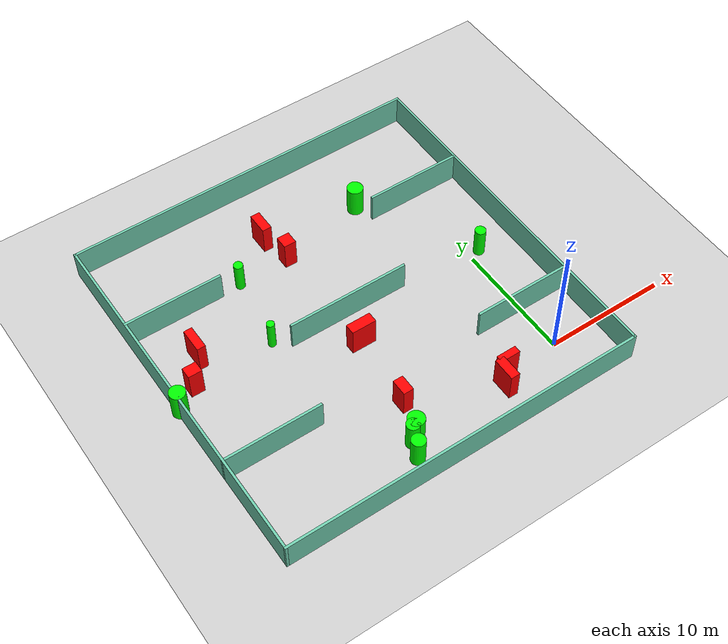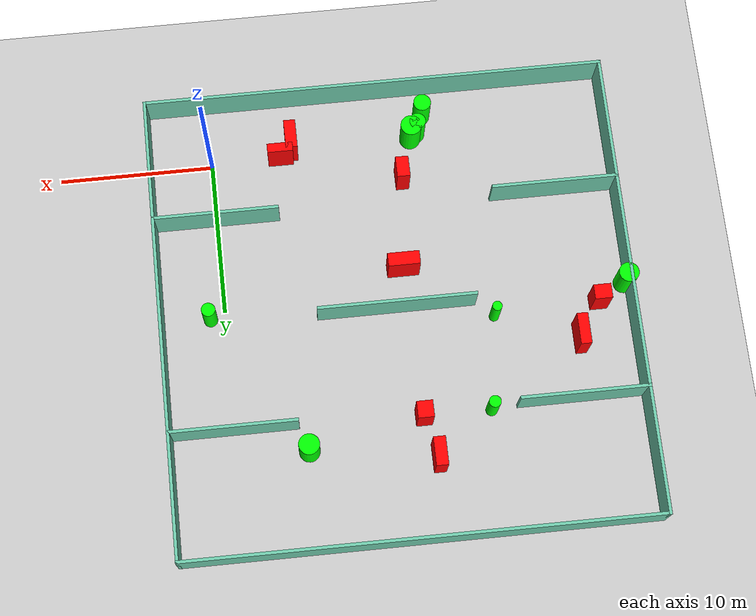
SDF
<sdf version="1.7">
 <world name="default">
  <light name="sun" type="directional">
   <pose>0 0 10 0 -0 0</pose>
   <diffuse>0.8 0.8 0.8 1</diffuse>
   <specular>0.2 0.2 0.2 1</specular>
   <attenuation>
    <range>1000</range>
    <constant>0.9</constant>
    <linear>0.01</linear>
    <quadratic>0.001</quadratic>
   </attenuation>
   <direction>-0.5 0.1 -0.9</direction>
   <spot><inner_angle>0</inner_angle><outer_angle>0</outer_angle><falloff>0</falloff></spot>
  </light>
  <model name="ground_plane">
   <static>1</static>
   <link name="link">
    <collision name="collision">
     <geometry><plane><normal>0 0 1</normal><size>100 100</size></plane></geometry>
     <surface>
      <contact><collide_bitmask>65535</collide_bitmask></contact>
      <friction><ode><mu>100</mu><mu2>50</mu2></ode></friction>
     </surface>
    </collision>
    <visual name="visual">
     <cast_shadows>0</cast_shadows>
     <geometry><plane><normal>0 0 1</normal><size>100 100</size></plane></geometry>
     <material>
      <script><uri>file://media/materials/scripts/gazebo.material</uri><name>Gazebo/Grey</name></script>
     </material>
    </visual>
   </link>
  </model>
  <gravity>0 0 -9.8</gravity>
  <magnetic_field>6e-06 2.3e-05 -4.2e-05</magnetic_field>
  <atmosphere type="adiabatic"/>
  <physics type="ode">
   <max_step_size>0.001</max_step_size>
   <real_time_factor>1</real_time_factor>
   <real_time_update_rate>1000</real_time_update_rate>
  </physics>
  <scene><ambient>0.4 0.4 0.4 1</ambient><background>0.7 0.7 0.7 1</background><shadows>1</shadows></scene>
  <spherical_coordinates>
   <surface_model>EARTH_WGS84</surface_model>
   <latitude_deg>0</latitude_deg>
   <longitude_deg>0</longitude_deg>
   <elevation>0</elevation>
   <heading_deg>0</heading_deg>
  </spherical_coordinates>
  <model name="my_base_walls">
   <link name="Wall_10">
    <collision name="Wall_10_Collision">
     <geometry><box><size>8.2 0.2 2.5</size></box></geometry>
     <pose>0 0 1.25 0 -0 0</pose>
    </collision>
    <visual name="Wall_10_Visual">
     <pose>0 0 1.25 0 -0 0</pose>
     <geometry><box><size>8.2 0.2 2.5</size></box></geometry>
     <material>
      <script><uri>file://media/materials/scripts/gazebo.material</uri><name>Gazebo/Grey</name></script>
      <ambient>0.435294 0.796078 0.67451 1</ambient>
     </material>
     <meta><layer>0</layer></meta>
    </visual>
    <pose>-11 -7 0 0 -0 0</pose>
   </link>
   <link name="Wall_12">
    <collision name="Wall_12_Collision">
     <geometry><box><size>8.2 0.2 2.5</size></box></geometry>
     <pose>0 0 1.25 0 -0 0</pose>
    </collision>
    <visual name="Wall_12_Visual">
     <pose>0 0 1.25 0 -0 0</pose>
     <geometry><box><size>8.2 0.2 2.5</size></box></geometry>
     <material>
      <script><uri>file://media/materials/scripts/gazebo.material</uri><name>Gazebo/Grey</name></script>
      <ambient>0.435294 0.796078 0.67451 1</ambient>
     </material>
     <meta><layer>0</layer></meta>
    </visual>
    <pose>-11 7 0 0 -0 0</pose>
   </link>
   <link name="Wall_14">
    <collision name="Wall_14_Collision">
     <geometry><box><size>8.2 0.2 2.5</size></box></geometry>
     <pose>0 0 1.25 0 -0 0</pose>
    </collision>
    <visual name="Wall_14_Visual">
     <pose>0 0 1.25 0 -0 0</pose>
     <geometry><box><size>8.2 0.2 2.5</size></box></geometry>
     <material>
      <script><uri>file://media/materials/scripts/gazebo.material</uri><name>Gazebo/Grey</name></script>
      <ambient>0.435294 0.796078 0.67451 1</ambient>
     </material>
     <meta><layer>0</layer></meta>
    </visual>
    <pose>11 7 0 0 -0 3.14159</pose>
   </link>
   <link name="Wall_16">
    <collision name="Wall_16_Collision">
     <geometry><box><size>10.2 0.2 2.5</size></box></geometry>
     <pose>0 0 1.25 0 -0 0</pose>
    </collision>
    <visual name="Wall_16_Visual">
     <pose>0 0 1.25 0 -0 0</pose>
     <geometry><box><size>10.2 0.2 2.5</size></box></geometry>
     <material>
      <script><uri>file://media/materials/scripts/gazebo.material</uri><name>Gazebo/Grey</name></script>
      <ambient>0.435294 0.796078 0.67451 1</ambient>
     </material>
     <meta><layer>0</layer></meta>
    </visual>
    <pose>0 0 0 0 -0 3.14159</pose>
   </link>
   <link name="Wall_2">
    <collision name="Wall_2_Collision">
     <geometry><box><size>30.2 0.2 2.5</size></box></geometry>
     <pose>0 0 1.25 0 -0 0</pose>
    </collision>
    <visual name="Wall_2_Visual">
     <pose>0 0 1.25 0 -0 0</pose>
     <geometry><box><size>30.2 0.2 2.5</size></box></geometry>
     <material>
      <script><uri>file://media/materials/scripts/gazebo.material</uri><name>Gazebo/Grey</name></script>
      <ambient>0.435294 0.796078 0.67451 1</ambient>
     </material>
     <meta><layer>0</layer></meta>
    </visual>
    <pose>0 -15 0 0 -0 3.14159</pose>
   </link>
   <link name="Wall_3">
    <collision name="Wall_3_Collision">
     <geometry><box><size>30.2 0.2 2.5</size></box></geometry>
     <pose>0 0 1.25 0 -0 0</pose>
    </collision>
    <visual name="Wall_3_Visual">
     <pose>0 0 1.25 0 -0 0</pose>
     <geometry><box><size>30.2 0.2 2.5</size></box></geometry>
     <material>
      <script><uri>file://media/materials/scripts/gazebo.material</uri><name>Gazebo/Grey</name></script>
      <ambient>0.435294 0.796078 0.67451 1</ambient>
     </material>
     <meta><layer>0</layer></meta>
    </visual>
    <pose>-15 0 0 0 -0 1.5708</pose>
   </link>
   <link name="Wall_4">
    <collision name="Wall_4_Collision">
     <geometry><box><size>30.2 0.2 2.5</size></box></geometry>
     <pose>0 0 1.25 0 -0 0</pose>
    </collision>
    <visual name="Wall_4_Visual">
     <pose>0 0 1.25 0 -0 0</pose>
     <geometry><box><size>30.2 0.2 2.5</size></box></geometry>
     <material>
      <script><uri>file://media/materials/scripts/gazebo.material</uri><name>Gazebo/Grey</name></script>
      <ambient>0.435294 0.796078 0.67451 1</ambient>
     </material>
     <meta><layer>0</layer></meta>
    </visual>
    <pose>0 15 0 0 -0 0</pose>
   </link>
   <link name="Wall_6">
    <collision name="Wall_6_Collision">
     <geometry><box><size>30.2 0.2 2.5</size></box></geometry>
     <pose>0 0 1.25 0 -0 0</pose>
    </collision>
    <visual name="Wall_6_Visual">
     <pose>0 0 1.25 0 -0 0</pose>
     <geometry><box><size>30.2 0.2 2.5</size></box></geometry>
     <material>
      <script><uri>file://media/materials/scripts/gazebo.material</uri><name>Gazebo/Grey</name></script>
      <ambient>0.435294 0.796078 0.67451 1</ambient>
     </material>
     <meta><layer>0</layer></meta>
    </visual>
    <pose>15 0 0 0 -0 1.5708</pose>
   </link>
   <link name="Wall_8">
    <collision name="Wall_8_Collision">
     <geometry><box><size>8.2 0.2 2.5</size></box></geometry>
     <pose>0 0 1.25 0 -0 0</pose>
    </collision>
    <visual name="Wall_8_Visual">
     <pose>0 0 1.25 0 -0 0</pose>
     <geometry><box><size>8.2 0.2 2.5</size></box></geometry>
     <material>
      <script><uri>file://media/materials/scripts/gazebo.material</uri><name>Gazebo/Grey</name></script>
      <ambient>0.435294 0.796078 0.67451 1</ambient>
     </material>
     <meta><layer>0</layer></meta>
    </visual>
    <pose>11 -7 0 0 -0 3.14159</pose>
   </link>
   <static>1</static>
   <pose>-11 11 0 0 -0 0</pose>
  </model>
  <model name="cylinder1">
   <static>1</static>
   <link name="link">
    <inertial>
     <mass>1</mass>
     <inertia><ixx>0.5</ixx><ixy>0</ixy><ixz>0</ixz><iyy>0.5</iyy><iyz>0</iyz><izz>1</izz></inertia>
    </inertial>
    <collision name="collision">
     <geometry><cylinder><radius>0.31347864846174145</radius><length>2.5</length></cylinder></geometry>
    </collision>
    <visual name="visual">
     <geometry><cylinder><radius>0.31347864846174145</radius><length>2.5</length></cylinder></geometry>
     <material>
      <ambient>0 1 0 1</ambient>
      <diffuse>0 1 0 1</diffuse>
      <specular>0.1 0.1 0.1 1</specular>
      <emissive>0 0 0 0</emissive>
     </material>
    </visual>
   </link>
   <pose>-17.216995051466526 11.991832120749155 1.25 0 0 0</pose>
  </model>
  <model name="cylinder2">
   <static>1</static>
   <link name="link">
    <inertial>
     <mass>1</mass>
     <inertia><ixx>0.5</ixx><ixy>0</ixy><ixz>0</ixz><iyy>0.5</iyy><iyz>0</iyz><izz>1</izz></inertia>
    </inertial>
    <collision name="collision">
     <geometry><cylinder><radius>0.3807092695333236</radius><length>2.5</length></cylinder></geometry>
    </collision>
    <visual name="visual">
     <geometry><cylinder><radius>0.3807092695333236</radius><length>2.5</length></cylinder></geometry>
     <material>
      <ambient>0 1 0 1</ambient>
      <diffuse>0 1 0 1</diffuse>
      <specular>0.1 0.1 0.1 1</specular>
      <emissive>0 0 0 0</emissive>
     </material>
    </visual>
   </link>
   <pose>-16.29957629749972 18.085996418535274 1.25 0 0 0</pose>
  </model>
  <model name="cylinder3">
   <static>1</static>
   <link name="link">
    <inertial>
     <mass>1</mass>
     <inertia><ixx>0.5</ixx><ixy>0</ixy><ixz>0</ixz><iyy>0.5</iyy><iyz>0</iyz><izz>1</izz></inertia>
    </inertial>
    <collision name="collision">
     <geometry><cylinder><radius>0.6391161196297536</radius><length>2.5</length></cylinder></geometry>
    </collision>
    <visual name="visual">
     <geometry><cylinder><radius>0.6391161196297536</radius><length>2.5</length></cylinder></geometry>
     <material>
      <ambient>0 1 0 1</ambient>
      <diffuse>0 1 0 1</diffuse>
      <specular>0.1 0.1 0.1 1</specular>
      <emissive>0 0 0 0</emissive>
     </material>
    </visual>
   </link>
   <pose>-25.814162444521642 10.601903884716979 1.25 0 0 0</pose>
  </model>
  <model name="cylinder4">
   <static>1</static>
   <link name="link">
    <inertial>
     <mass>1</mass>
     <inertia><ixx>0.5</ixx><ixy>0</ixy><ixz>0</ixz><iyy>0.5</iyy><iyz>0</iyz><izz>1</izz></inertia>
    </inertial>
    <collision name="collision">
     <geometry><cylinder><radius>0.6636733930178406</radius><length>2.5</length></cylinder></geometry>
    </collision>
    <visual name="visual">
     <geometry><cylinder><radius>0.6636733930178406</radius><length>2.5</length></cylinder></geometry>
     <material>
      <ambient>0 1 0 1</ambient>
      <diffuse>0 1 0 1</diffuse>
      <specular>0.1 0.1 0.1 1</specular>
      <emissive>0 0 0 0</emissive>
     </material>
    </visual>
   </link>
   <pose>-4.589282240710551 19.617493360085053 1.25 0 0 0</pose>
  </model>
  <model name="cylinder5">
   <static>1</static>
   <link name="link">
    <inertial>
     <mass>1</mass>
     <inertia><ixx>0.5</ixx><ixy>0</ixy><ixz>0</ixz><iyy>0.5</iyy><iyz>0</iyz><izz>1</izz></inertia>
    </inertial>
    <collision name="collision">
     <geometry><cylinder><radius>0.6796687035177027</radius><length>2.5</length></cylinder></geometry>
    </collision>
    <visual name="visual">
     <geometry><cylinder><radius>0.6796687035177027</radius><length>2.5</length></cylinder></geometry>
     <material>
      <ambient>0 1 0 1</ambient>
      <diffuse>0 1 0 1</diffuse>
      <specular>0.1 0.1 0.1 1</specular>
      <emissive>0 0 0 0</emissive>
     </material>
    </visual>
   </link>
   <pose>-13.19548707815838 -0.7324544803242339 1.25 0 0 0</pose>
  </model>
  <model name="cylinder6">
   <static>1</static>
   <link name="link">
    <inertial>
     <mass>1</mass>
     <inertia><ixx>0.5</ixx><ixy>0</ixy><ixz>0</ixz><iyy>0.5</iyy><iyz>0</iyz><izz>1</izz></inertia>
    </inertial>
    <collision name="collision">
     <geometry><cylinder><radius>0.5639723464779869</radius><length>2.5</length></cylinder></geometry>
    </collision>
    <visual name="visual">
     <geometry><cylinder><radius>0.5639723464779869</radius><length>2.5</length></cylinder></geometry>
     <material>
      <ambient>0 1 0 1</ambient>
      <diffuse>0 1 0 1</diffuse>
      <specular>0.1 0.1 0.1 1</specular>
      <emissive>0 0 0 0</emissive>
     </material>
    </visual>
   </link>
   <pose>-14.088211354365743 -2.2534820672544913 1.25 0 0 0</pose>
  </model>
  <model name="cylinder7">
   <static>1</static>
   <link name="link">
    <inertial>
     <mass>1</mass>
     <inertia><ixx>0.5</ixx><ixy>0</ixy><ixz>0</ixz><iyy>0.5</iyy><iyz>0</iyz><izz>1</izz></inertia>
    </inertial>
    <collision name="collision">
     <geometry><cylinder><radius>0.5292618038602795</radius><length>2.5</length></cylinder></geometry>
    </collision>
    <visual name="visual">
     <geometry><cylinder><radius>0.5292618038602795</radius><length>2.5</length></cylinder></geometry>
     <material>
      <ambient>0 1 0 1</ambient>
      <diffuse>0 1 0 1</diffuse>
      <specular>0.1 0.1 0.1 1</specular>
      <emissive>0 0 0 0</emissive>
     </material>
    </visual>
   </link>
   <pose>-13.644487904849461 -0.9928102948212816 1.25 0 0 0</pose>
  </model>
  <model name="cylinder8">
   <static>1</static>
   <link name="link">
    <inertial>
     <mass>1</mass>
     <inertia><ixx>0.5</ixx><ixy>0</ixy><ixz>0</ixz><iyy>0.5</iyy><iyz>0</iyz><izz>1</izz></inertia>
    </inertial>
    <collision name="collision">
     <geometry><cylinder><radius>0.4459077540857686</radius><length>2.5</length></cylinder></geometry>
    </collision>
    <visual name="visual">
     <geometry><cylinder><radius>0.4459077540857686</radius><length>2.5</length></cylinder></geometry>
     <material>
      <ambient>0 1 0 1</ambient>
      <diffuse>0 1 0 1</diffuse>
      <specular>0.1 0.1 0.1 1</specular>
      <emissive>0 0 0 0</emissive>
     </material>
    </visual>
   </link>
   <pose>0.919639906197137 10.436818043854135 1.25 0 0 0</pose>
  </model>
  <model name="box1">
   <static>1</static>
   <link name="link">
    <inertial>
     <mass>1</mass>
     <inertia><ixx>0.083</ixx><ixy>0</ixy><ixz>0</ixz><iyy>0.083</iyy><iyz>0</iyz><izz>0.083</izz></inertia>
    </inertial>
    <collision name="collision">
     <geometry><box><size>1.0216008483642665 1.0690128214341614 2.5</size></box></geometry>
    </collision>
    <visual name="visual">
     <geometry><box><size>1.0216008483642665 1.0690128214341614 2.5</size></box></geometry>
     <material>
      <ambient>1 0 0 1</ambient>
      <diffuse>1 0 0 1</diffuse>
      <specular>0.1 0.1 0.1 1</specular>
      <emissive>0 0 0 0</emissive>
     </material>
    </visual>
    <sensor name="my_contact" type="contact">
     <contact><collision>box_collision</collision><topic>__default_topic__</topic></contact>
    </sensor>
   </link>
   <pose>-11.953715132639688 18.129438884995764 1.25 0 0 0</pose>
  </model>
  <model name="box2">
   <static>1</static>
   <link name="link">
    <inertial>
     <mass>1</mass>
     <inertia><ixx>0.083</ixx><ixy>0</ixy><ixz>0</ixz><iyy>0.083</iyy><iyz>0</iyz><izz>0.083</izz></inertia>
    </inertial>
    <collision name="collision">
     <geometry><box><size>2.0483441844636667 0.8618850100282995 2.5</size></box></geometry>
    </collision>
    <visual name="visual">
     <geometry><box><size>2.0483441844636667 0.8618850100282995 2.5</size></box></geometry>
     <material>
      <ambient>1 0 0 1</ambient>
      <diffuse>1 0 0 1</diffuse>
      <specular>0.1 0.1 0.1 1</specular>
      <emissive>0 0 0 0</emissive>
     </material>
    </visual>
    <sensor name="my_contact" type="contact">
     <contact><collision>box_collision</collision><topic>__default_topic__</topic></contact>
    </sensor>
   </link>
   <pose>-11.714092056749069 8.275842320855919 1.25 0 0 0</pose>
  </model>
  <model name="box3">
   <static>1</static>
   <link name="link">
    <inertial>
     <mass>1</mass>
     <inertia><ixx>0.083</ixx><ixy>0</ixy><ixz>0</ixz><iyy>0.083</iyy><iyz>0</iyz><izz>0.083</izz></inertia>
    </inertial>
    <collision name="collision">
     <geometry><box><size>0.839449228336308 1.354502608451207 2.5</size></box></geometry>
    </collision>
    <visual name="visual">
     <geometry><box><size>0.839449228336308 1.354502608451207 2.5</size></box></geometry>
     <material>
      <ambient>1 0 0 1</ambient>
      <diffuse>1 0 0 1</diffuse>
      <specular>0.1 0.1 0.1 1</specular>
      <emissive>0 0 0 0</emissive>
     </material>
    </visual>
    <sensor name="my_contact" type="contact">
     <contact><collision>box_collision</collision><topic>__default_topic__</topic></contact>
    </sensor>
   </link>
   <pose>-12.330662190020558 2.0519536203200914 1.25 0 0 0</pose>
  </model>
  <model name="box4">
   <static>1</static>
   <link name="link">
    <inertial>
     <mass>1</mass>
     <inertia><ixx>0.083</ixx><ixy>0</ixy><ixz>0</ixz><iyy>0.083</iyy><iyz>0</iyz><izz>0.083</izz></inertia>
    </inertial>
    <collision name="collision">
     <geometry><box><size>0.7717869884009382 1.816683868486693 2.5</size></box></geometry>
    </collision>
    <visual name="visual">
     <geometry><box><size>0.7717869884009382 1.816683868486693 2.5</size></box></geometry>
     <material>
      <ambient>1 0 0 1</ambient>
      <diffuse>1 0 0 1</diffuse>
      <specular>0.1 0.1 0.1 1</specular>
      <emissive>0 0 0 0</emissive>
     </material>
    </visual>
    <sensor name="my_contact" type="contact">
     <contact><collision>box_collision</collision><topic>__default_topic__</topic></contact>
    </sensor>
   </link>
   <pose>-12.600289807505847 20.818038550510735 1.25 0 0 0</pose>
  </model>
  <model name="box5">
   <static>1</static>
   <link name="link">
    <inertial>
     <mass>1</mass>
     <inertia><ixx>0.083</ixx><ixy>0</ixy><ixz>0</ixz><iyy>0.083</iyy><iyz>0</iyz><izz>0.083</izz></inertia>
    </inertial>
    <collision name="collision">
     <geometry><box><size>1.649548505559262 0.5954417086090749 2.5</size></box></geometry>
    </collision>
    <visual name="visual">
     <geometry><box><size>1.649548505559262 0.5954417086090749 2.5</size></box></geometry>
     <material>
      <ambient>1 0 0 1</ambient>
      <diffuse>1 0 0 1</diffuse>
      <specular>0.1 0.1 0.1 1</specular>
      <emissive>0 0 0 0</emissive>
     </material>
    </visual>
    <sensor name="my_contact" type="contact">
     <contact><collision>box_collision</collision><topic>__default_topic__</topic></contact>
    </sensor>
   </link>
   <pose>-4.539555999851805 -0.05330933197642507 1.25 0 0 0</pose>
  </model>
  <model name="box6">
   <static>1</static>
   <link name="link">
    <inertial>
     <mass>1</mass>
     <inertia><ixx>0.083</ixx><ixy>0</ixy><ixz>0</ixz><iyy>0.083</iyy><iyz>0</iyz><izz>0.083</izz></inertia>
    </inertial>
    <collision name="collision">
     <geometry><box><size>0.6956905022721974 1.9912052536205955 2.5</size></box></geometry>
    </collision>
    <visual name="visual">
     <geometry><box><size>0.6956905022721974 1.9912052536205955 2.5</size></box></geometry>
     <material>
      <ambient>1 0 0 1</ambient>
      <diffuse>1 0 0 1</diffuse>
      <specular>0.1 0.1 0.1 1</specular>
      <emissive>0 0 0 0</emissive>
     </material>
    </visual>
    <sensor name="my_contact" type="contact">
     <contact><collision>box_collision</collision><topic>__default_topic__</topic></contact>
    </sensor>
   </link>
   <pose>-22.466394323969805 13.96996470093514 1.25 0 0 0</pose>
  </model>
  <model name="box7">
   <static>1</static>
   <link name="link">
    <inertial>
     <mass>1</mass>
     <inertia><ixx>0.083</ixx><ixy>0</ixy><ixz>0</ixz><iyy>0.083</iyy><iyz>0</iyz><izz>0.083</izz></inertia>
    </inertial>
    <collision name="collision">
     <geometry><box><size>0.7639426091539843 1.8828587881765508 2.5</size></box></geometry>
    </collision>
    <visual name="visual">
     <geometry><box><size>0.7639426091539843 1.8828587881765508 2.5</size></box></geometry>
     <material>
      <ambient>1 0 0 1</ambient>
      <diffuse>1 0 0 1</diffuse>
      <specular>0.1 0.1 0.1 1</specular>
      <emissive>0 0 0 0</emissive>
     </material>
    </visual>
    <sensor name="my_contact" type="contact">
     <contact><collision>box_collision</collision><topic>__default_topic__</topic></contact>
    </sensor>
   </link>
   <pose>-5.306282836452219 -0.9401809013999696 1.25 0 0 0</pose>
  </model>
  <model name="box8">
   <static>1</static>
   <link name="link">
    <inertial>
     <mass>1</mass>
     <inertia><ixx>0.083</ixx><ixy>0</ixy><ixz>0</ixz><iyy>0.083</iyy><iyz>0</iyz><izz>0.083</izz></inertia>
    </inertial>
    <collision name="collision">
     <geometry><box><size>1.1188627729291076 0.9396227641371293 2.5</size></box></geometry>
    </collision>
    <visual name="visual">
     <geometry><box><size>1.1188627729291076 0.9396227641371293 2.5</size></box></geometry>
     <material>
      <ambient>1 0 0 1</ambient>
      <diffuse>1 0 0 1</diffuse>
      <specular>0.1 0.1 0.1 1</specular>
      <emissive>0 0 0 0</emissive>
     </material>
    </visual>
    <sensor name="my_contact" type="contact">
     <contact><collision>box_collision</collision><topic>__default_topic__</topic></contact>
    </sensor>
   </link>
   <pose>-23.981952382597495 11.692657643703711 1.25 0 0 0</pose>
  </model>
 </world>
</sdf>
